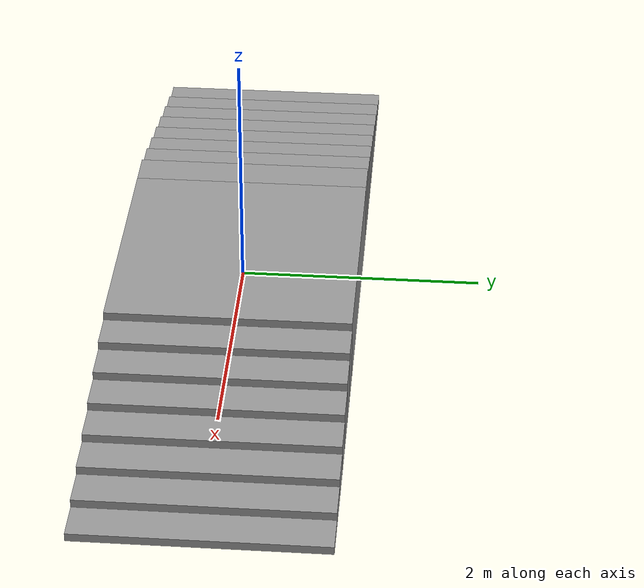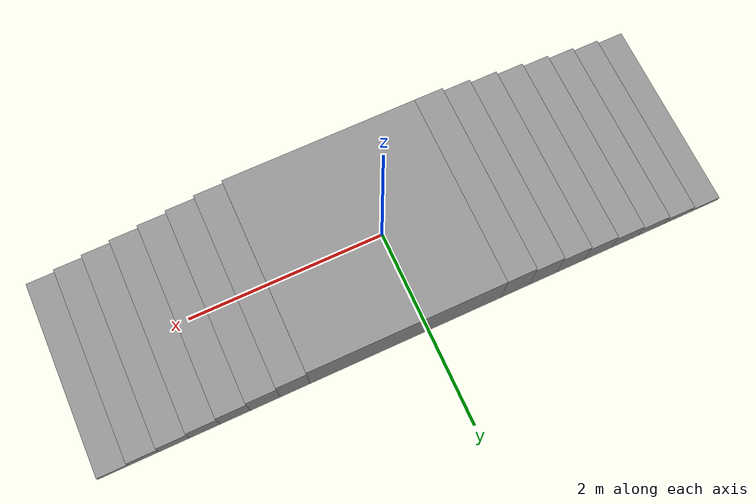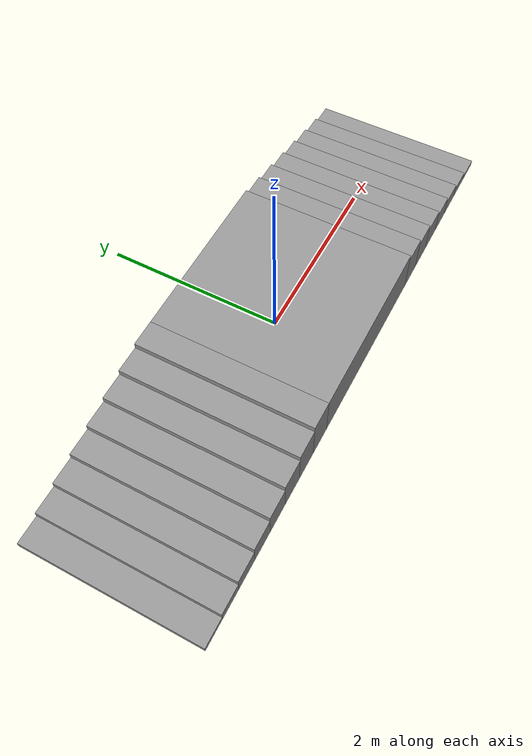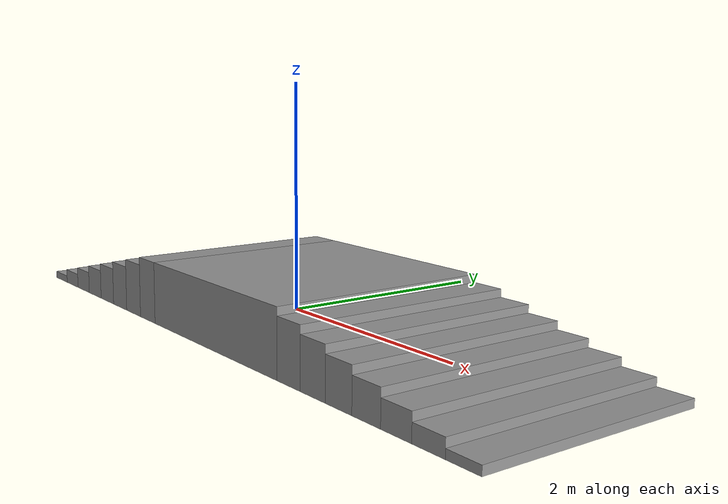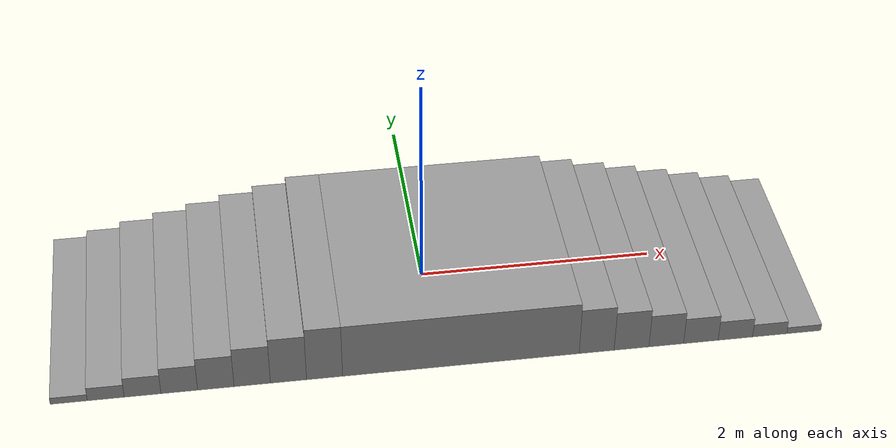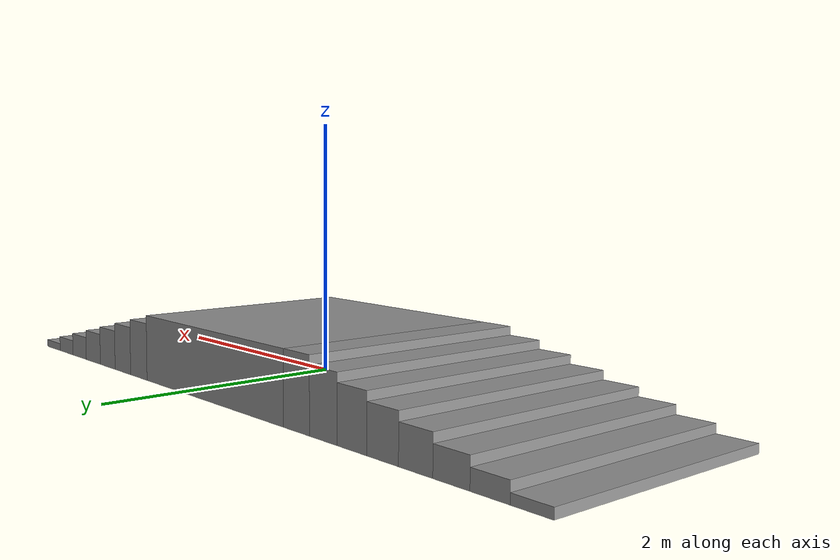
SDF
<?xml version='1.0'?>
<sdf version='1.7'>
  <model name='7cm'>
    <link name='link_0'>
      <inertial>
        <mass>1</mass>
        <inertia>
          <ixx>0.166667</ixx>
          <ixy>0</ixy>
          <ixz>0</ixz>
          <iyy>0.166667</iyy>
          <iyz>0</iyz>
          <izz>0.166667</izz>
        </inertia>
        <pose>0 0 0 0 -0 0</pose>
      </inertial>
      <pose>-3.04688 0 -0.1225 0 -0 0</pose>
      <gravity>1</gravity>
      <self_collide>0</self_collide>
      <kinematic>1</kinematic>
      <enable_wind>0</enable_wind>
      <visual name='visual'>
        <pose>0 0 0 0 -0 0</pose>
        <geometry>
          <box>
            <size>0.3 2 0.07</size>
          </box>
        </geometry>
        <material>
          <lighting>1</lighting>
          <script>
            <uri>file://media/materials/scripts/gazebo.material</uri>
            <name>Gazebo/Grey</name>
          </script>
          <shader type='pixel'>
            <normal_map>__default__</normal_map>
          </shader>
          <ambient>0.3 0.3 0.3 1</ambient>
          <diffuse>0.7 0.7 0.7 1</diffuse>
          <specular>0.01 0.01 0.01 1</specular>
          <emissive>0 0 0 1</emissive>
        </material>
        <transparency>0</transparency>
        <cast_shadows>1</cast_shadows>
      </visual>
      <collision name='collision'>
        <laser_retro>0</laser_retro>
        <max_contacts>10</max_contacts>
        <pose>0 0 0 0 -0 0</pose>
        <geometry>
          <box>
            <size>0.3 2 0.07</size>
          </box>
        </geometry>
        <surface>
          <friction>
            <ode>
              <mu>1</mu>
              <mu2>1</mu2>
              <fdir1>0 0 0</fdir1>
              <slip1>0</slip1>
              <slip2>0</slip2>
            </ode>
            <torsional>
              <coefficient>1</coefficient>
              <patch_radius>0</patch_radius>
              <surface_radius>0</surface_radius>
              <use_patch_radius>1</use_patch_radius>
              <ode>
                <slip>0</slip>
              </ode>
            </torsional>
          </friction>
          <bounce>
            <restitution_coefficient>0</restitution_coefficient>
            <threshold>1e+06</threshold>
          </bounce>
          <contact>
            <collide_without_contact>0</collide_without_contact>
            <collide_without_contact_bitmask>1</collide_without_contact_bitmask>
            <collide_bitmask>1</collide_bitmask>
            <ode>
              <soft_cfm>0</soft_cfm>
              <soft_erp>0.2</soft_erp>
              <kp>1e+13</kp>
              <kd>1</kd>
              <max_vel>0.01</max_vel>
              <min_depth>0</min_depth>
            </ode>
            <bullet>
              <split_impulse>1</split_impulse>
              <split_impulse_penetration_threshold>-0.01</split_impulse_penetration_threshold>
              <soft_cfm>0</soft_cfm>
              <soft_erp>0.2</soft_erp>
              <kp>1e+13</kp>
              <kd>1</kd>
            </bullet>
          </contact>
        </surface>
      </collision>
    </link>
    <link name='link_0_clone'>
      <inertial>
        <mass>1</mass>
        <inertia>
          <ixx>0.166667</ixx>
          <ixy>0</ixy>
          <ixz>0</ixz>
          <iyy>0.166667</iyy>
          <iyz>0</iyz>
          <izz>0.166667</izz>
        </inertia>
        <pose>0 0 0 0 -0 0</pose>
      </inertial>
      <pose>-2.74688 0 -0.0875 0 -0 0</pose>
      <gravity>1</gravity>
      <self_collide>0</self_collide>
      <kinematic>1</kinematic>
      <enable_wind>0</enable_wind>
      <visual name='visual'>
        <pose>0 0 0 0 -0 0</pose>
        <geometry>
          <box>
            <size>0.3 2 0.14</size>
          </box>
        </geometry>
        <material>
          <lighting>1</lighting>
          <script>
            <uri>file://media/materials/scripts/gazebo.material</uri>
            <name>Gazebo/Grey</name>
          </script>
          <shader type='pixel'>
            <normal_map>__default__</normal_map>
          </shader>
          <ambient>0.3 0.3 0.3 1</ambient>
          <diffuse>0.7 0.7 0.7 1</diffuse>
          <specular>0.01 0.01 0.01 1</specular>
          <emissive>0 0 0 1</emissive>
        </material>
        <transparency>0</transparency>
        <cast_shadows>1</cast_shadows>
      </visual>
      <collision name='collision'>
        <laser_retro>0</laser_retro>
        <max_contacts>10</max_contacts>
        <pose>0 0 0 0 -0 0</pose>
        <geometry>
          <box>
            <size>0.3 2 0.14</size>
          </box>
        </geometry>
        <surface>
          <friction>
            <ode>
              <mu>1</mu>
              <mu2>1</mu2>
              <fdir1>0 0 0</fdir1>
              <slip1>0</slip1>
              <slip2>0</slip2>
            </ode>
            <torsional>
              <coefficient>1</coefficient>
              <patch_radius>0</patch_radius>
              <surface_radius>0</surface_radius>
              <use_patch_radius>1</use_patch_radius>
              <ode>
                <slip>0</slip>
              </ode>
            </torsional>
          </friction>
          <bounce>
            <restitution_coefficient>0</restitution_coefficient>
            <threshold>1e+06</threshold>
          </bounce>
          <contact>
            <collide_without_contact>0</collide_without_contact>
            <collide_without_contact_bitmask>1</collide_without_contact_bitmask>
            <collide_bitmask>1</collide_bitmask>
            <ode>
              <soft_cfm>0</soft_cfm>
              <soft_erp>0.2</soft_erp>
              <kp>1e+13</kp>
              <kd>1</kd>
              <max_vel>0.01</max_vel>
              <min_depth>0</min_depth>
            </ode>
            <bullet>
              <split_impulse>1</split_impulse>
              <split_impulse_penetration_threshold>-0.01</split_impulse_penetration_threshold>
              <soft_cfm>0</soft_cfm>
              <soft_erp>0.2</soft_erp>
              <kp>1e+13</kp>
              <kd>1</kd>
            </bullet>
          </contact>
        </surface>
      </collision>
    </link>
    <link name='link_0_clone_0'>
      <inertial>
        <mass>1</mass>
        <inertia>
          <ixx>0.166667</ixx>
          <ixy>0</ixy>
          <ixz>0</ixz>
          <iyy>0.166667</iyy>
          <iyz>0</iyz>
          <izz>0.166667</izz>
        </inertia>
        <pose>0 0 0 0 -0 0</pose>
      </inertial>
      <pose>3.15313 0 -0.1225 0 -0 0</pose>
      <gravity>1</gravity>
      <self_collide>0</self_collide>
      <kinematic>1</kinematic>
      <enable_wind>0</enable_wind>
      <visual name='visual'>
        <pose>0 0 0 0 -0 0</pose>
        <geometry>
          <box>
            <size>0.3 2 0.07</size>
          </box>
        </geometry>
        <material>
          <lighting>1</lighting>
          <script>
            <uri>file://media/materials/scripts/gazebo.material</uri>
            <name>Gazebo/Grey</name>
          </script>
          <shader type='pixel'>
            <normal_map>__default__</normal_map>
          </shader>
          <ambient>0.3 0.3 0.3 1</ambient>
          <diffuse>0.7 0.7 0.7 1</diffuse>
          <specular>0.01 0.01 0.01 1</specular>
          <emissive>0 0 0 1</emissive>
        </material>
        <transparency>0</transparency>
        <cast_shadows>1</cast_shadows>
      </visual>
      <collision name='collision'>
        <laser_retro>0</laser_retro>
        <max_contacts>10</max_contacts>
        <pose>0 0 0 0 -0 0</pose>
        <geometry>
          <box>
            <size>0.3 2 0.07</size>
          </box>
        </geometry>
        <surface>
          <friction>
            <ode>
              <mu>1</mu>
              <mu2>1</mu2>
              <fdir1>0 0 0</fdir1>
              <slip1>0</slip1>
              <slip2>0</slip2>
            </ode>
            <torsional>
              <coefficient>1</coefficient>
              <patch_radius>0</patch_radius>
              <surface_radius>0</surface_radius>
              <use_patch_radius>1</use_patch_radius>
              <ode>
                <slip>0</slip>
              </ode>
            </torsional>
          </friction>
          <bounce>
            <restitution_coefficient>0</restitution_coefficient>
            <threshold>1e+06</threshold>
          </bounce>
          <contact>
            <collide_without_contact>0</collide_without_contact>
            <collide_without_contact_bitmask>1</collide_without_contact_bitmask>
            <collide_bitmask>1</collide_bitmask>
            <ode>
              <soft_cfm>0</soft_cfm>
              <soft_erp>0.2</soft_erp>
              <kp>1e+13</kp>
              <kd>1</kd>
              <max_vel>0.01</max_vel>
              <min_depth>0</min_depth>
            </ode>
            <bullet>
              <split_impulse>1</split_impulse>
              <split_impulse_penetration_threshold>-0.01</split_impulse_penetration_threshold>
              <soft_cfm>0</soft_cfm>
              <soft_erp>0.2</soft_erp>
              <kp>1e+13</kp>
              <kd>1</kd>
            </bullet>
          </contact>
        </surface>
      </collision>
    </link>
    <link name='link_0_clone_clone'>
      <inertial>
        <mass>1</mass>
        <inertia>
          <ixx>0.166667</ixx>
          <ixy>0</ixy>
          <ixz>0</ixz>
          <iyy>0.166667</iyy>
          <iyz>0</iyz>
          <izz>0.166667</izz>
        </inertia>
        <pose>0 0 0 0 -0 0</pose>
      </inertial>
      <pose>-2.44687 0 -0.0525 0 -0 0</pose>
      <gravity>1</gravity>
      <self_collide>0</self_collide>
      <kinematic>1</kinematic>
      <enable_wind>0</enable_wind>
      <visual name='visual'>
        <pose>0 0 0 0 -0 0</pose>
        <geometry>
          <box>
            <size>0.3 2 0.21</size>
          </box>
        </geometry>
        <material>
          <lighting>1</lighting>
          <script>
            <uri>file://media/materials/scripts/gazebo.material</uri>
            <name>Gazebo/Grey</name>
          </script>
          <shader type='pixel'>
            <normal_map>__default__</normal_map>
          </shader>
          <ambient>0.3 0.3 0.3 1</ambient>
          <diffuse>0.7 0.7 0.7 1</diffuse>
          <specular>0.01 0.01 0.01 1</specular>
          <emissive>0 0 0 1</emissive>
        </material>
        <transparency>0</transparency>
        <cast_shadows>1</cast_shadows>
      </visual>
      <collision name='collision'>
        <laser_retro>0</laser_retro>
        <max_contacts>10</max_contacts>
        <pose>0 0 0 0 -0 0</pose>
        <geometry>
          <box>
            <size>0.3 2 0.21</size>
          </box>
        </geometry>
        <surface>
          <friction>
            <ode>
              <mu>1</mu>
              <mu2>1</mu2>
              <fdir1>0 0 0</fdir1>
              <slip1>0</slip1>
              <slip2>0</slip2>
            </ode>
            <torsional>
              <coefficient>1</coefficient>
              <patch_radius>0</patch_radius>
              <surface_radius>0</surface_radius>
              <use_patch_radius>1</use_patch_radius>
              <ode>
                <slip>0</slip>
              </ode>
            </torsional>
          </friction>
          <bounce>
            <restitution_coefficient>0</restitution_coefficient>
            <threshold>1e+06</threshold>
          </bounce>
          <contact>
            <collide_without_contact>0</collide_without_contact>
            <collide_without_contact_bitmask>1</collide_without_contact_bitmask>
            <collide_bitmask>1</collide_bitmask>
            <ode>
              <soft_cfm>0</soft_cfm>
              <soft_erp>0.2</soft_erp>
              <kp>1e+13</kp>
              <kd>1</kd>
              <max_vel>0.01</max_vel>
              <min_depth>0</min_depth>
            </ode>
            <bullet>
              <split_impulse>1</split_impulse>
              <split_impulse_penetration_threshold>-0.01</split_impulse_penetration_threshold>
              <soft_cfm>0</soft_cfm>
              <soft_erp>0.2</soft_erp>
              <kp>1e+13</kp>
              <kd>1</kd>
            </bullet>
          </contact>
        </surface>
      </collision>
    </link>
    <link name='link_0_clone_clone_0'>
      <inertial>
        <mass>1</mass>
        <inertia>
          <ixx>0.166667</ixx>
          <ixy>0</ixy>
          <ixz>0</ixz>
          <iyy>0.166667</iyy>
          <iyz>0</iyz>
          <izz>0.166667</izz>
        </inertia>
        <pose>0 0 0 0 -0 0</pose>
      </inertial>
      <pose>2.85312 0 -0.0875 0 -0 0</pose>
      <gravity>1</gravity>
      <self_collide>0</self_collide>
      <kinematic>1</kinematic>
      <enable_wind>0</enable_wind>
      <visual name='visual'>
        <pose>0 0 0 0 -0 0</pose>
        <geometry>
          <box>
            <size>0.3 2 0.14</size>
          </box>
        </geometry>
        <material>
          <lighting>1</lighting>
          <script>
            <uri>file://media/materials/scripts/gazebo.material</uri>
            <name>Gazebo/Grey</name>
          </script>
          <shader type='pixel'>
            <normal_map>__default__</normal_map>
          </shader>
          <ambient>0.3 0.3 0.3 1</ambient>
          <diffuse>0.7 0.7 0.7 1</diffuse>
          <specular>0.01 0.01 0.01 1</specular>
          <emissive>0 0 0 1</emissive>
        </material>
        <transparency>0</transparency>
        <cast_shadows>1</cast_shadows>
      </visual>
      <collision name='collision'>
        <laser_retro>0</laser_retro>
        <max_contacts>10</max_contacts>
        <pose>0 0 0 0 -0 0</pose>
        <geometry>
          <box>
            <size>0.3 2 0.14</size>
          </box>
        </geometry>
        <surface>
          <friction>
            <ode>
              <mu>1</mu>
              <mu2>1</mu2>
              <fdir1>0 0 0</fdir1>
              <slip1>0</slip1>
              <slip2>0</slip2>
            </ode>
            <torsional>
              <coefficient>1</coefficient>
              <patch_radius>0</patch_radius>
              <surface_radius>0</surface_radius>
              <use_patch_radius>1</use_patch_radius>
              <ode>
                <slip>0</slip>
              </ode>
            </torsional>
          </friction>
          <bounce>
            <restitution_coefficient>0</restitution_coefficient>
            <threshold>1e+06</threshold>
          </bounce>
          <contact>
            <collide_without_contact>0</collide_without_contact>
            <collide_without_contact_bitmask>1</collide_without_contact_bitmask>
            <collide_bitmask>1</collide_bitmask>
            <ode>
              <soft_cfm>0</soft_cfm>
              <soft_erp>0.2</soft_erp>
              <kp>1e+13</kp>
              <kd>1</kd>
              <max_vel>0.01</max_vel>
              <min_depth>0</min_depth>
            </ode>
            <bullet>
              <split_impulse>1</split_impulse>
              <split_impulse_penetration_threshold>-0.01</split_impulse_penetration_threshold>
              <soft_cfm>0</soft_cfm>
              <soft_erp>0.2</soft_erp>
              <kp>1e+13</kp>
              <kd>1</kd>
            </bullet>
          </contact>
        </surface>
      </collision>
    </link>
    <link name='link_0_clone_clone_clone'>
      <inertial>
        <mass>1</mass>
        <inertia>
          <ixx>0.166667</ixx>
          <ixy>0</ixy>
          <ixz>0</ixz>
          <iyy>0.166667</iyy>
          <iyz>0</iyz>
          <izz>0.166667</izz>
        </inertia>
        <pose>0 0 0 0 -0 0</pose>
      </inertial>
      <pose>-2.14688 0 -0.0175 0 -0 0</pose>
      <gravity>1</gravity>
      <self_collide>0</self_collide>
      <kinematic>1</kinematic>
      <enable_wind>0</enable_wind>
      <visual name='visual'>
        <pose>0 0 0 0 -0 0</pose>
        <geometry>
          <box>
            <size>0.3 2 0.28</size>
          </box>
        </geometry>
        <material>
          <lighting>1</lighting>
          <script>
            <uri>file://media/materials/scripts/gazebo.material</uri>
            <name>Gazebo/Grey</name>
          </script>
          <shader type='pixel'>
            <normal_map>__default__</normal_map>
          </shader>
          <ambient>0.3 0.3 0.3 1</ambient>
          <diffuse>0.7 0.7 0.7 1</diffuse>
          <specular>0.01 0.01 0.01 1</specular>
          <emissive>0 0 0 1</emissive>
        </material>
        <transparency>0</transparency>
        <cast_shadows>1</cast_shadows>
      </visual>
      <collision name='collision'>
        <laser_retro>0</laser_retro>
        <max_contacts>10</max_contacts>
        <pose>0 0 0 0 -0 0</pose>
        <geometry>
          <box>
            <size>0.3 2 0.28</size>
          </box>
        </geometry>
        <surface>
          <friction>
            <ode>
              <mu>1</mu>
              <mu2>1</mu2>
              <fdir1>0 0 0</fdir1>
              <slip1>0</slip1>
              <slip2>0</slip2>
            </ode>
            <torsional>
              <coefficient>1</coefficient>
              <patch_radius>0</patch_radius>
              <surface_radius>0</surface_radius>
              <use_patch_radius>1</use_patch_radius>
              <ode>
                <slip>0</slip>
              </ode>
            </torsional>
          </friction>
          <bounce>
            <restitution_coefficient>0</restitution_coefficient>
            <threshold>1e+06</threshold>
          </bounce>
          <contact>
            <collide_without_contact>0</collide_without_contact>
            <collide_without_contact_bitmask>1</collide_without_contact_bitmask>
            <collide_bitmask>1</collide_bitmask>
            <ode>
              <soft_cfm>0</soft_cfm>
              <soft_erp>0.2</soft_erp>
              <kp>1e+13</kp>
              <kd>1</kd>
              <max_vel>0.01</max_vel>
              <min_depth>0</min_depth>
            </ode>
            <bullet>
              <split_impulse>1</split_impulse>
              <split_impulse_penetration_threshold>-0.01</split_impulse_penetration_threshold>
              <soft_cfm>0</soft_cfm>
              <soft_erp>0.2</soft_erp>
              <kp>1e+13</kp>
              <kd>1</kd>
            </bullet>
          </contact>
        </surface>
      </collision>
    </link>
    <link name='link_0_clone_clone_clone_0'>
      <inertial>
        <mass>1</mass>
        <inertia>
          <ixx>0.166667</ixx>
          <ixy>0</ixy>
          <ixz>0</ixz>
          <iyy>0.166667</iyy>
          <iyz>0</iyz>
          <izz>0.166667</izz>
        </inertia>
        <pose>0 0 0 0 -0 0</pose>
      </inertial>
      <pose>2.55313 0 -0.0525 0 -0 0</pose>
      <gravity>1</gravity>
      <self_collide>0</self_collide>
      <kinematic>1</kinematic>
      <enable_wind>0</enable_wind>
      <visual name='visual'>
        <pose>0 0 0 0 -0 0</pose>
        <geometry>
          <box>
            <size>0.3 2 0.21</size>
          </box>
        </geometry>
        <material>
          <lighting>1</lighting>
          <script>
            <uri>file://media/materials/scripts/gazebo.material</uri>
            <name>Gazebo/Grey</name>
          </script>
          <shader type='pixel'>
            <normal_map>__default__</normal_map>
          </shader>
          <ambient>0.3 0.3 0.3 1</ambient>
          <diffuse>0.7 0.7 0.7 1</diffuse>
          <specular>0.01 0.01 0.01 1</specular>
          <emissive>0 0 0 1</emissive>
        </material>
        <transparency>0</transparency>
        <cast_shadows>1</cast_shadows>
      </visual>
      <collision name='collision'>
        <laser_retro>0</laser_retro>
        <max_contacts>10</max_contacts>
        <pose>0 0 0 0 -0 0</pose>
        <geometry>
          <box>
            <size>0.3 2 0.21</size>
          </box>
        </geometry>
        <surface>
          <friction>
            <ode>
              <mu>1</mu>
              <mu2>1</mu2>
              <fdir1>0 0 0</fdir1>
              <slip1>0</slip1>
              <slip2>0</slip2>
            </ode>
            <torsional>
              <coefficient>1</coefficient>
              <patch_radius>0</patch_radius>
              <surface_radius>0</surface_radius>
              <use_patch_radius>1</use_patch_radius>
              <ode>
                <slip>0</slip>
              </ode>
            </torsional>
          </friction>
          <bounce>
            <restitution_coefficient>0</restitution_coefficient>
            <threshold>1e+06</threshold>
          </bounce>
          <contact>
            <collide_without_contact>0</collide_without_contact>
            <collide_without_contact_bitmask>1</collide_without_contact_bitmask>
            <collide_bitmask>1</collide_bitmask>
            <ode>
              <soft_cfm>0</soft_cfm>
              <soft_erp>0.2</soft_erp>
              <kp>1e+13</kp>
              <kd>1</kd>
              <max_vel>0.01</max_vel>
              <min_depth>0</min_depth>
            </ode>
            <bullet>
              <split_impulse>1</split_impulse>
              <split_impulse_penetration_threshold>-0.01</split_impulse_penetration_threshold>
              <soft_cfm>0</soft_cfm>
              <soft_erp>0.2</soft_erp>
              <kp>1e+13</kp>
              <kd>1</kd>
            </bullet>
          </contact>
        </surface>
      </collision>
    </link>
    <link name='link_0_clone_clone_clone_clone'>
      <inertial>
        <mass>1</mass>
        <inertia>
          <ixx>0.166667</ixx>
          <ixy>0</ixy>
          <ixz>0</ixz>
          <iyy>0.166667</iyy>
          <iyz>0</iyz>
          <izz>0.166667</izz>
        </inertia>
        <pose>0 0 0 0 -0 0</pose>
      </inertial>
      <pose>-1.84688 0 0.0175 0 -0 0</pose>
      <gravity>1</gravity>
      <self_collide>0</self_collide>
      <kinematic>1</kinematic>
      <enable_wind>0</enable_wind>
      <visual name='visual'>
        <pose>0 0 0 0 -0 0</pose>
        <geometry>
          <box>
            <size>0.3 2 0.35</size>
          </box>
        </geometry>
        <material>
          <lighting>1</lighting>
          <script>
            <uri>file://media/materials/scripts/gazebo.material</uri>
            <name>Gazebo/Grey</name>
          </script>
          <shader type='pixel'>
            <normal_map>__default__</normal_map>
          </shader>
          <ambient>0.3 0.3 0.3 1</ambient>
          <diffuse>0.7 0.7 0.7 1</diffuse>
          <specular>0.01 0.01 0.01 1</specular>
          <emissive>0 0 0 1</emissive>
        </material>
        <transparency>0</transparency>
        <cast_shadows>1</cast_shadows>
      </visual>
      <collision name='collision'>
        <laser_retro>0</laser_retro>
        <max_contacts>10</max_contacts>
        <pose>0 0 0 0 -0 0</pose>
        <geometry>
          <box>
            <size>0.3 2 0.35</size>
          </box>
        </geometry>
        <surface>
          <friction>
            <ode>
              <mu>1</mu>
              <mu2>1</mu2>
              <fdir1>0 0 0</fdir1>
              <slip1>0</slip1>
              <slip2>0</slip2>
            </ode>
            <torsional>
              <coefficient>1</coefficient>
              <patch_radius>0</patch_radius>
              <surface_radius>0</surface_radius>
              <use_patch_radius>1</use_patch_radius>
              <ode>
                <slip>0</slip>
              </ode>
            </torsional>
          </friction>
          <bounce>
            <restitution_coefficient>0</restitution_coefficient>
            <threshold>1e+06</threshold>
          </bounce>
          <contact>
            <collide_without_contact>0</collide_without_contact>
            <collide_without_contact_bitmask>1</collide_without_contact_bitmask>
            <collide_bitmask>1</collide_bitmask>
            <ode>
              <soft_cfm>0</soft_cfm>
              <soft_erp>0.2</soft_erp>
              <kp>1e+13</kp>
              <kd>1</kd>
              <max_vel>0.01</max_vel>
              <min_depth>0</min_depth>
            </ode>
            <bullet>
              <split_impulse>1</split_impulse>
              <split_impulse_penetration_threshold>-0.01</split_impulse_penetration_threshold>
              <soft_cfm>0</soft_cfm>
              <soft_erp>0.2</soft_erp>
              <kp>1e+13</kp>
              <kd>1</kd>
            </bullet>
          </contact>
        </surface>
      </collision>
    </link>
    <link name='link_0_clone_clone_clone_clone_0'>
      <inertial>
        <mass>1</mass>
        <inertia>
          <ixx>0.166667</ixx>
          <ixy>0</ixy>
          <ixz>0</ixz>
          <iyy>0.166667</iyy>
          <iyz>0</iyz>
          <izz>0.166667</izz>
        </inertia>
        <pose>0 0 0 0 -0 0</pose>
      </inertial>
      <pose>2.25312 0 -0.0175 0 -0 0</pose>
      <gravity>1</gravity>
      <self_collide>0</self_collide>
      <kinematic>1</kinematic>
      <enable_wind>0</enable_wind>
      <visual name='visual'>
        <pose>0 0 0 0 -0 0</pose>
        <geometry>
          <box>
            <size>0.3 2 0.28</size>
          </box>
        </geometry>
        <material>
          <lighting>1</lighting>
          <script>
            <uri>file://media/materials/scripts/gazebo.material</uri>
            <name>Gazebo/Grey</name>
          </script>
          <shader type='pixel'>
            <normal_map>__default__</normal_map>
          </shader>
          <ambient>0.3 0.3 0.3 1</ambient>
          <diffuse>0.7 0.7 0.7 1</diffuse>
          <specular>0.01 0.01 0.01 1</specular>
          <emissive>0 0 0 1</emissive>
        </material>
        <transparency>0</transparency>
        <cast_shadows>1</cast_shadows>
      </visual>
      <collision name='collision'>
        <laser_retro>0</laser_retro>
        <max_contacts>10</max_contacts>
        <pose>0 0 0 0 -0 0</pose>
        <geometry>
          <box>
            <size>0.3 2 0.28</size>
          </box>
        </geometry>
        <surface>
          <friction>
            <ode>
              <mu>1</mu>
              <mu2>1</mu2>
              <fdir1>0 0 0</fdir1>
              <slip1>0</slip1>
              <slip2>0</slip2>
            </ode>
            <torsional>
              <coefficient>1</coefficient>
              <patch_radius>0</patch_radius>
              <surface_radius>0</surface_radius>
              <use_patch_radius>1</use_patch_radius>
              <ode>
                <slip>0</slip>
              </ode>
            </torsional>
          </friction>
          <bounce>
            <restitution_coefficient>0</restitution_coefficient>
            <threshold>1e+06</threshold>
          </bounce>
          <contact>
            <collide_without_contact>0</collide_without_contact>
            <collide_without_contact_bitmask>1</collide_without_contact_bitmask>
            <collide_bitmask>1</collide_bitmask>
            <ode>
              <soft_cfm>0</soft_cfm>
              <soft_erp>0.2</soft_erp>
              <kp>1e+13</kp>
              <kd>1</kd>
              <max_vel>0.01</max_vel>
              <min_depth>0</min_depth>
            </ode>
            <bullet>
              <split_impulse>1</split_impulse>
              <split_impulse_penetration_threshold>-0.01</split_impulse_penetration_threshold>
              <soft_cfm>0</soft_cfm>
              <soft_erp>0.2</soft_erp>
              <kp>1e+13</kp>
              <kd>1</kd>
            </bullet>
          </contact>
        </surface>
      </collision>
    </link>
    <link name='link_0_clone_clone_clone_clone_clone'>
      <inertial>
        <mass>1</mass>
        <inertia>
          <ixx>0.166667</ixx>
          <ixy>0</ixy>
          <ixz>0</ixz>
          <iyy>0.166667</iyy>
          <iyz>0</iyz>
          <izz>0.166667</izz>
        </inertia>
        <pose>0 0 0 0 -0 0</pose>
      </inertial>
      <pose>-1.54688 0 0.0525 0 -0 0</pose>
      <gravity>1</gravity>
      <self_collide>0</self_collide>
      <kinematic>1</kinematic>
      <enable_wind>0</enable_wind>
      <visual name='visual'>
        <pose>0 0 0 0 -0 0</pose>
        <geometry>
          <box>
            <size>0.3 2 0.42</size>
          </box>
        </geometry>
        <material>
          <lighting>1</lighting>
          <script>
            <uri>file://media/materials/scripts/gazebo.material</uri>
            <name>Gazebo/Grey</name>
          </script>
          <shader type='pixel'>
            <normal_map>__default__</normal_map>
          </shader>
          <ambient>0.3 0.3 0.3 1</ambient>
          <diffuse>0.7 0.7 0.7 1</diffuse>
          <specular>0.01 0.01 0.01 1</specular>
          <emissive>0 0 0 1</emissive>
        </material>
        <transparency>0</transparency>
        <cast_shadows>1</cast_shadows>
      </visual>
      <collision name='collision'>
        <laser_retro>0</laser_retro>
        <max_contacts>10</max_contacts>
        <pose>0 0 0 0 -0 0</pose>
        <geometry>
          <box>
            <size>0.3 2 0.42</size>
          </box>
        </geometry>
        <surface>
          <friction>
            <ode>
              <mu>1</mu>
              <mu2>1</mu2>
              <fdir1>0 0 0</fdir1>
              <slip1>0</slip1>
              <slip2>0</slip2>
            </ode>
            <torsional>
              <coefficient>1</coefficient>
              <patch_radius>0</patch_radius>
              <surface_radius>0</surface_radius>
              <use_patch_radius>1</use_patch_radius>
              <ode>
                <slip>0</slip>
              </ode>
            </torsional>
          </friction>
          <bounce>
            <restitution_coefficient>0</restitution_coefficient>
            <threshold>1e+06</threshold>
          </bounce>
          <contact>
            <collide_without_contact>0</collide_without_contact>
            <collide_without_contact_bitmask>1</collide_without_contact_bitmask>
            <collide_bitmask>1</collide_bitmask>
            <ode>
              <soft_cfm>0</soft_cfm>
              <soft_erp>0.2</soft_erp>
              <kp>1e+13</kp>
              <kd>1</kd>
              <max_vel>0.01</max_vel>
              <min_depth>0</min_depth>
            </ode>
            <bullet>
              <split_impulse>1</split_impulse>
              <split_impulse_penetration_threshold>-0.01</split_impulse_penetration_threshold>
              <soft_cfm>0</soft_cfm>
              <soft_erp>0.2</soft_erp>
              <kp>1e+13</kp>
              <kd>1</kd>
            </bullet>
          </contact>
        </surface>
      </collision>
    </link>
    <link name='link_0_clone_clone_clone_clone_clone_0'>
      <inertial>
        <mass>1</mass>
        <inertia>
          <ixx>0.166667</ixx>
          <ixy>0</ixy>
          <ixz>0</ixz>
          <iyy>0.166667</iyy>
          <iyz>0</iyz>
          <izz>0.166667</izz>
        </inertia>
        <pose>0 0 0 0 -0 0</pose>
      </inertial>
      <pose>1.95312 0 0.0175 0 -0 0</pose>
      <gravity>1</gravity>
      <self_collide>0</self_collide>
      <kinematic>1</kinematic>
      <enable_wind>0</enable_wind>
      <visual name='visual'>
        <pose>0 0 0 0 -0 0</pose>
        <geometry>
          <box>
            <size>0.3 2 0.35</size>
          </box>
        </geometry>
        <material>
          <lighting>1</lighting>
          <script>
            <uri>file://media/materials/scripts/gazebo.material</uri>
            <name>Gazebo/Grey</name>
          </script>
          <shader type='pixel'>
            <normal_map>__default__</normal_map>
          </shader>
          <ambient>0.3 0.3 0.3 1</ambient>
          <diffuse>0.7 0.7 0.7 1</diffuse>
          <specular>0.01 0.01 0.01 1</specular>
          <emissive>0 0 0 1</emissive>
        </material>
        <transparency>0</transparency>
        <cast_shadows>1</cast_shadows>
      </visual>
      <collision name='collision'>
        <laser_retro>0</laser_retro>
        <max_contacts>10</max_contacts>
        <pose>0 0 0 0 -0 0</pose>
        <geometry>
          <box>
            <size>0.3 2 0.35</size>
          </box>
        </geometry>
        <surface>
          <friction>
            <ode>
              <mu>1</mu>
              <mu2>1</mu2>
              <fdir1>0 0 0</fdir1>
              <slip1>0</slip1>
              <slip2>0</slip2>
            </ode>
            <torsional>
              <coefficient>1</coefficient>
              <patch_radius>0</patch_radius>
              <surface_radius>0</surface_radius>
              <use_patch_radius>1</use_patch_radius>
              <ode>
                <slip>0</slip>
              </ode>
            </torsional>
          </friction>
          <bounce>
            <restitution_coefficient>0</restitution_coefficient>
            <threshold>1e+06</threshold>
          </bounce>
          <contact>
            <collide_without_contact>0</collide_without_contact>
            <collide_without_contact_bitmask>1</collide_without_contact_bitmask>
            <collide_bitmask>1</collide_bitmask>
            <ode>
              <soft_cfm>0</soft_cfm>
              <soft_erp>0.2</soft_erp>
              <kp>1e+13</kp>
              <kd>1</kd>
              <max_vel>0.01</max_vel>
              <min_depth>0</min_depth>
            </ode>
            <bullet>
              <split_impulse>1</split_impulse>
              <split_impulse_penetration_threshold>-0.01</split_impulse_penetration_threshold>
              <soft_cfm>0</soft_cfm>
              <soft_erp>0.2</soft_erp>
              <kp>1e+13</kp>
              <kd>1</kd>
            </bullet>
          </contact>
        </surface>
      </collision>
    </link>
    <link name='link_0_clone_clone_clone_clone_clone_clone'>
      <inertial>
        <mass>1</mass>
        <inertia>
          <ixx>0.166667</ixx>
          <ixy>0</ixy>
          <ixz>0</ixz>
          <iyy>0.166667</iyy>
          <iyz>0</iyz>
          <izz>0.166667</izz>
        </inertia>
        <pose>0 0 0 0 -0 0</pose>
      </inertial>
      <pose>-1.24687 0 0.0875 0 -0 0</pose>
      <gravity>1</gravity>
      <self_collide>0</self_collide>
      <kinematic>1</kinematic>
      <enable_wind>0</enable_wind>
      <visual name='visual'>
        <pose>0 0 0 0 -0 0</pose>
        <geometry>
          <box>
            <size>0.3 2 0.49</size>
          </box>
        </geometry>
        <material>
          <lighting>1</lighting>
          <script>
            <uri>file://media/materials/scripts/gazebo.material</uri>
            <name>Gazebo/Grey</name>
          </script>
          <shader type='pixel'>
            <normal_map>__default__</normal_map>
          </shader>
          <ambient>0.3 0.3 0.3 1</ambient>
          <diffuse>0.7 0.7 0.7 1</diffuse>
          <specular>0.01 0.01 0.01 1</specular>
          <emissive>0 0 0 1</emissive>
        </material>
        <transparency>0</transparency>
        <cast_shadows>1</cast_shadows>
      </visual>
      <collision name='collision'>
        <laser_retro>0</laser_retro>
        <max_contacts>10</max_contacts>
        <pose>0 0 0 0 -0 0</pose>
        <geometry>
          <box>
            <size>0.3 2 0.49</size>
          </box>
        </geometry>
        <surface>
          <friction>
            <ode>
              <mu>1</mu>
              <mu2>1</mu2>
              <fdir1>0 0 0</fdir1>
              <slip1>0</slip1>
              <slip2>0</slip2>
            </ode>
            <torsional>
              <coefficient>1</coefficient>
              <patch_radius>0</patch_radius>
              <surface_radius>0</surface_radius>
              <use_patch_radius>1</use_patch_radius>
              <ode>
                <slip>0</slip>
              </ode>
            </torsional>
          </friction>
          <bounce>
            <restitution_coefficient>0</restitution_coefficient>
            <threshold>1e+06</threshold>
          </bounce>
          <contact>
            <collide_without_contact>0</collide_without_contact>
            <collide_without_contact_bitmask>1</collide_without_contact_bitmask>
            <collide_bitmask>1</collide_bitmask>
            <ode>
              <soft_cfm>0</soft_cfm>
              <soft_erp>0.2</soft_erp>
              <kp>1e+13</kp>
              <kd>1</kd>
              <max_vel>0.01</max_vel>
              <min_depth>0</min_depth>
            </ode>
            <bullet>
              <split_impulse>1</split_impulse>
              <split_impulse_penetration_threshold>-0.01</split_impulse_penetration_threshold>
              <soft_cfm>0</soft_cfm>
              <soft_erp>0.2</soft_erp>
              <kp>1e+13</kp>
              <kd>1</kd>
            </bullet>
          </contact>
        </surface>
      </collision>
    </link>
    <link name='link_0_clone_clone_clone_clone_clone_clone_0'>
      <inertial>
        <mass>1</mass>
        <inertia>
          <ixx>0.166667</ixx>
          <ixy>0</ixy>
          <ixz>0</ixz>
          <iyy>0.166667</iyy>
          <iyz>0</iyz>
          <izz>0.166667</izz>
        </inertia>
        <pose>0 0 0 0 -0 0</pose>
      </inertial>
      <pose>1.65312 0 0.0525 0 -0 0</pose>
      <gravity>1</gravity>
      <self_collide>0</self_collide>
      <kinematic>1</kinematic>
      <enable_wind>0</enable_wind>
      <visual name='visual'>
        <pose>0 0 0 0 -0 0</pose>
        <geometry>
          <box>
            <size>0.3 2 0.42</size>
          </box>
        </geometry>
        <material>
          <lighting>1</lighting>
          <script>
            <uri>file://media/materials/scripts/gazebo.material</uri>
            <name>Gazebo/Grey</name>
          </script>
          <shader type='pixel'>
            <normal_map>__default__</normal_map>
          </shader>
          <ambient>0.3 0.3 0.3 1</ambient>
          <diffuse>0.7 0.7 0.7 1</diffuse>
          <specular>0.01 0.01 0.01 1</specular>
          <emissive>0 0 0 1</emissive>
        </material>
        <transparency>0</transparency>
        <cast_shadows>1</cast_shadows>
      </visual>
      <collision name='collision'>
        <laser_retro>0</laser_retro>
        <max_contacts>10</max_contacts>
        <pose>0 0 0 0 -0 0</pose>
        <geometry>
          <box>
            <size>0.3 2 0.42</size>
          </box>
        </geometry>
        <surface>
          <friction>
            <ode>
              <mu>1</mu>
              <mu2>1</mu2>
              <fdir1>0 0 0</fdir1>
              <slip1>0</slip1>
              <slip2>0</slip2>
            </ode>
            <torsional>
              <coefficient>1</coefficient>
              <patch_radius>0</patch_radius>
              <surface_radius>0</surface_radius>
              <use_patch_radius>1</use_patch_radius>
              <ode>
                <slip>0</slip>
              </ode>
            </torsional>
          </friction>
          <bounce>
            <restitution_coefficient>0</restitution_coefficient>
            <threshold>1e+06</threshold>
          </bounce>
          <contact>
            <collide_without_contact>0</collide_without_contact>
            <collide_without_contact_bitmask>1</collide_without_contact_bitmask>
            <collide_bitmask>1</collide_bitmask>
            <ode>
              <soft_cfm>0</soft_cfm>
              <soft_erp>0.2</soft_erp>
              <kp>1e+13</kp>
              <kd>1</kd>
              <max_vel>0.01</max_vel>
              <min_depth>0</min_depth>
            </ode>
            <bullet>
              <split_impulse>1</split_impulse>
              <split_impulse_penetration_threshold>-0.01</split_impulse_penetration_threshold>
              <soft_cfm>0</soft_cfm>
              <soft_erp>0.2</soft_erp>
              <kp>1e+13</kp>
              <kd>1</kd>
            </bullet>
          </contact>
        </surface>
      </collision>
    </link>
    <link name='link_0_clone_clone_clone_clone_clone_clone_clone'>
      <inertial>
        <mass>1</mass>
        <inertia>
          <ixx>0.166667</ixx>
          <ixy>0</ixy>
          <ixz>0</ixz>
          <iyy>0.166667</iyy>
          <iyz>0</iyz>
          <izz>0.166667</izz>
        </inertia>
        <pose>0 0 0 0 -0 0</pose>
      </inertial>
      <pose>-0.946875 0 0.1225 0 -0 0</pose>
      <gravity>1</gravity>
      <self_collide>0</self_collide>
      <kinematic>1</kinematic>
      <enable_wind>0</enable_wind>
      <visual name='visual'>
        <pose>0 0 0 0 -0 0</pose>
        <geometry>
          <box>
            <size>0.3 2 0.56</size>
          </box>
        </geometry>
        <material>
          <lighting>1</lighting>
          <script>
            <uri>file://media/materials/scripts/gazebo.material</uri>
            <name>Gazebo/Grey</name>
          </script>
          <shader type='pixel'>
            <normal_map>__default__</normal_map>
          </shader>
          <ambient>0.3 0.3 0.3 1</ambient>
          <diffuse>0.7 0.7 0.7 1</diffuse>
          <specular>0.01 0.01 0.01 1</specular>
          <emissive>0 0 0 1</emissive>
        </material>
        <transparency>0</transparency>
        <cast_shadows>1</cast_shadows>
      </visual>
      <collision name='collision'>
        <laser_retro>0</laser_retro>
        <max_contacts>10</max_contacts>
        <pose>0 0 0 0 -0 0</pose>
        <geometry>
          <box>
            <size>0.3 2 0.56</size>
          </box>
        </geometry>
        <surface>
          <friction>
            <ode>
              <mu>1</mu>
              <mu2>1</mu2>
              <fdir1>0 0 0</fdir1>
              <slip1>0</slip1>
              <slip2>0</slip2>
            </ode>
            <torsional>
              <coefficient>1</coefficient>
              <patch_radius>0</patch_radius>
              <surface_radius>0</surface_radius>
              <use_patch_radius>1</use_patch_radius>
              <ode>
                <slip>0</slip>
              </ode>
            </torsional>
          </friction>
          <bounce>
            <restitution_coefficient>0</restitution_coefficient>
            <threshold>1e+06</threshold>
          </bounce>
          <contact>
            <collide_without_contact>0</collide_without_contact>
            <collide_without_contact_bitmask>1</collide_without_contact_bitmask>
            <collide_bitmask>1</collide_bitmask>
            <ode>
              <soft_cfm>0</soft_cfm>
              <soft_erp>0.2</soft_erp>
              <kp>1e+13</kp>
              <kd>1</kd>
              <max_vel>0.01</max_vel>
              <min_depth>0</min_depth>
            </ode>
            <bullet>
              <split_impulse>1</split_impulse>
              <split_impulse_penetration_threshold>-0.01</split_impulse_penetration_threshold>
              <soft_cfm>0</soft_cfm>
              <soft_erp>0.2</soft_erp>
              <kp>1e+13</kp>
              <kd>1</kd>
            </bullet>
          </contact>
        </surface>
      </collision>
    </link>
    <link name='link_0_clone_clone_clone_clone_clone_clone_clone_0'>
      <inertial>
        <mass>1</mass>
        <inertia>
          <ixx>0.166667</ixx>
          <ixy>0</ixy>
          <ixz>0</ixz>
          <iyy>0.166667</iyy>
          <iyz>0</iyz>
          <izz>0.166667</izz>
        </inertia>
        <pose>0 0 0 0 -0 0</pose>
      </inertial>
      <pose>1.35312 0 0.0875 0 -0 0</pose>
      <gravity>1</gravity>
      <self_collide>0</self_collide>
      <kinematic>1</kinematic>
      <enable_wind>0</enable_wind>
      <visual name='visual'>
        <pose>0 0 0 0 -0 0</pose>
        <geometry>
          <box>
            <size>0.3 2 0.49</size>
          </box>
        </geometry>
        <material>
          <lighting>1</lighting>
          <script>
            <uri>file://media/materials/scripts/gazebo.material</uri>
            <name>Gazebo/Grey</name>
          </script>
          <shader type='pixel'>
            <normal_map>__default__</normal_map>
          </shader>
          <ambient>0.3 0.3 0.3 1</ambient>
          <diffuse>0.7 0.7 0.7 1</diffuse>
          <specular>0.01 0.01 0.01 1</specular>
          <emissive>0 0 0 1</emissive>
        </material>
        <transparency>0</transparency>
        <cast_shadows>1</cast_shadows>
      </visual>
      <collision name='collision'>
        <laser_retro>0</laser_retro>
        <max_contacts>10</max_contacts>
        <pose>0 0 0 0 -0 0</pose>
        <geometry>
          <box>
            <size>0.3 2 0.49</size>
          </box>
        </geometry>
        <surface>
          <friction>
            <ode>
              <mu>1</mu>
              <mu2>1</mu2>
              <fdir1>0 0 0</fdir1>
              <slip1>0</slip1>
              <slip2>0</slip2>
            </ode>
            <torsional>
              <coefficient>1</coefficient>
              <patch_radius>0</patch_radius>
              <surface_radius>0</surface_radius>
              <use_patch_radius>1</use_patch_radius>
              <ode>
                <slip>0</slip>
              </ode>
            </torsional>
          </friction>
          <bounce>
            <restitution_coefficient>0</restitution_coefficient>
            <threshold>1e+06</threshold>
          </bounce>
          <contact>
            <collide_without_contact>0</collide_without_contact>
            <collide_without_contact_bitmask>1</collide_without_contact_bitmask>
            <collide_bitmask>1</collide_bitmask>
            <ode>
              <soft_cfm>0</soft_cfm>
              <soft_erp>0.2</soft_erp>
              <kp>1e+13</kp>
              <kd>1</kd>
              <max_vel>0.01</max_vel>
              <min_depth>0</min_depth>
            </ode>
            <bullet>
              <split_impulse>1</split_impulse>
              <split_impulse_penetration_threshold>-0.01</split_impulse_penetration_threshold>
              <soft_cfm>0</soft_cfm>
              <soft_erp>0.2</soft_erp>
              <kp>1e+13</kp>
              <kd>1</kd>
            </bullet>
          </contact>
        </surface>
      </collision>
    </link>
    <link name='link_0_clone_clone_clone_clone_clone_clone_clone_clone'>
      <inertial>
        <mass>1</mass>
        <inertia>
          <ixx>0.166667</ixx>
          <ixy>0</ixy>
          <ixz>0</ixz>
          <iyy>0.166667</iyy>
          <iyz>0</iyz>
          <izz>0.166667</izz>
        </inertia>
        <pose>0 0 0 0 -0 0</pose>
      </inertial>
      <pose>0.203125 0 0.1225 0 -0 0</pose>
      <gravity>1</gravity>
      <self_collide>0</self_collide>
      <kinematic>1</kinematic>
      <enable_wind>0</enable_wind>
      <visual name='visual'>
        <pose>0 0 0 0 -0 0</pose>
        <geometry>
          <box>
            <size>2 2 0.56</size>
          </box>
        </geometry>
        <material>
          <lighting>1</lighting>
          <script>
            <uri>file://media/materials/scripts/gazebo.material</uri>
            <name>Gazebo/Grey</name>
          </script>
          <shader type='pixel'>
            <normal_map>__default__</normal_map>
          </shader>
          <ambient>0.3 0.3 0.3 1</ambient>
          <diffuse>0.7 0.7 0.7 1</diffuse>
          <specular>0.01 0.01 0.01 1</specular>
          <emissive>0 0 0 1</emissive>
        </material>
        <transparency>0</transparency>
        <cast_shadows>1</cast_shadows>
      </visual>
      <collision name='collision'>
        <laser_retro>0</laser_retro>
        <max_contacts>10</max_contacts>
        <pose>0 0 0 0 -0 0</pose>
        <geometry>
          <box>
            <size>2 2 0.56</size>
          </box>
        </geometry>
        <surface>
          <friction>
            <ode>
              <mu>1</mu>
              <mu2>1</mu2>
              <fdir1>0 0 0</fdir1>
              <slip1>0</slip1>
              <slip2>0</slip2>
            </ode>
            <torsional>
              <coefficient>1</coefficient>
              <patch_radius>0</patch_radius>
              <surface_radius>0</surface_radius>
              <use_patch_radius>1</use_patch_radius>
              <ode>
                <slip>0</slip>
              </ode>
            </torsional>
          </friction>
          <bounce>
            <restitution_coefficient>0</restitution_coefficient>
            <threshold>1e+06</threshold>
          </bounce>
          <contact>
            <collide_without_contact>0</collide_without_contact>
            <collide_without_contact_bitmask>1</collide_without_contact_bitmask>
            <collide_bitmask>1</collide_bitmask>
            <ode>
              <soft_cfm>0</soft_cfm>
              <soft_erp>0.2</soft_erp>
              <kp>1e+13</kp>
              <kd>1</kd>
              <max_vel>0.01</max_vel>
              <min_depth>0</min_depth>
            </ode>
            <bullet>
              <split_impulse>1</split_impulse>
              <split_impulse_penetration_threshold>-0.01</split_impulse_penetration_threshold>
              <soft_cfm>0</soft_cfm>
              <soft_erp>0.2</soft_erp>
              <kp>1e+13</kp>
              <kd>1</kd>
            </bullet>
          </contact>
        </surface>
      </collision>
    </link>
    <static>0</static>
    <allow_auto_disable>1</allow_auto_disable>
  </model>
</sdf>
